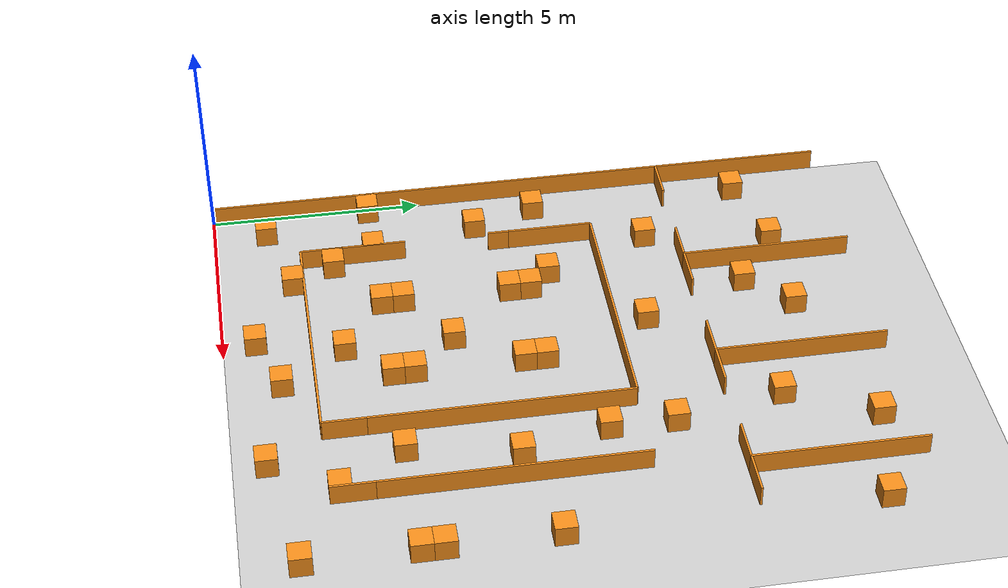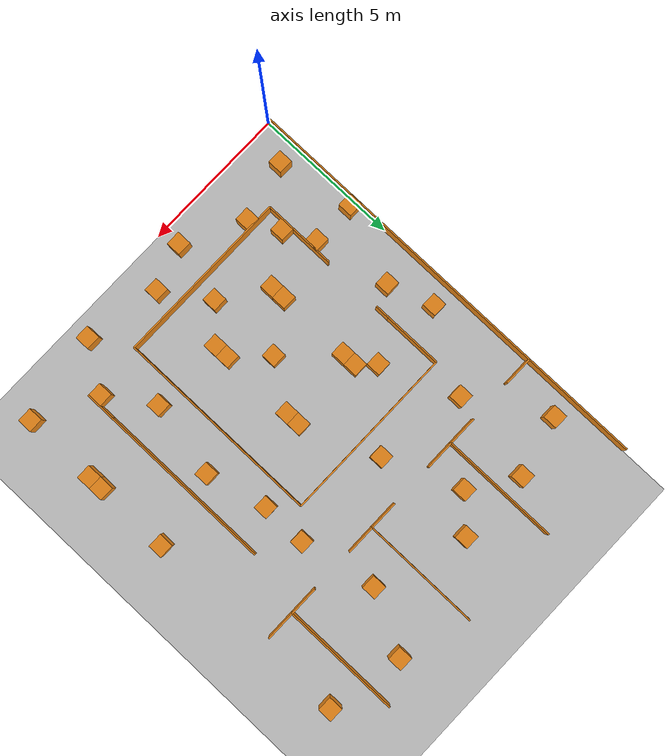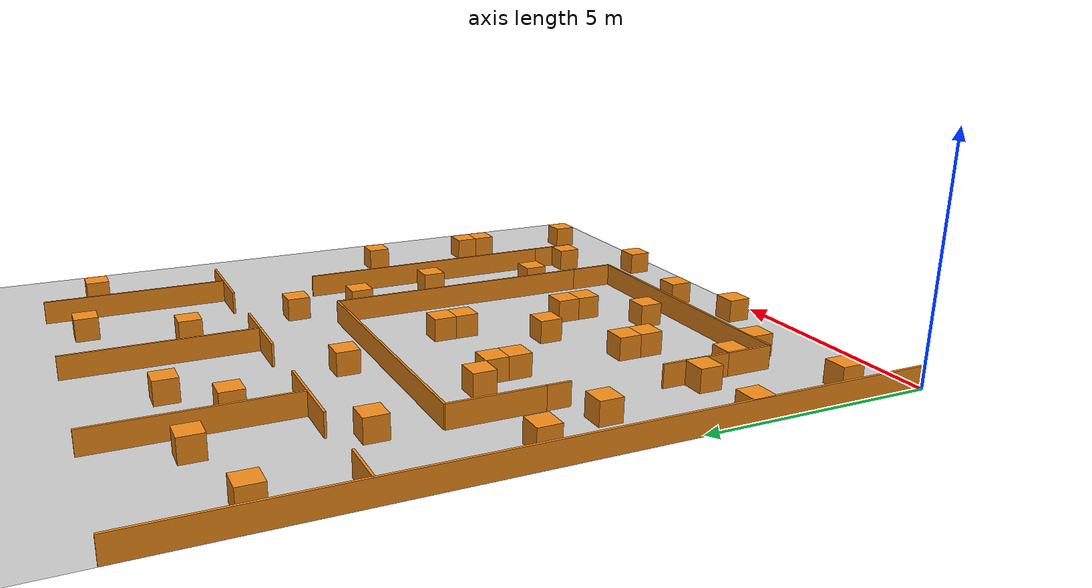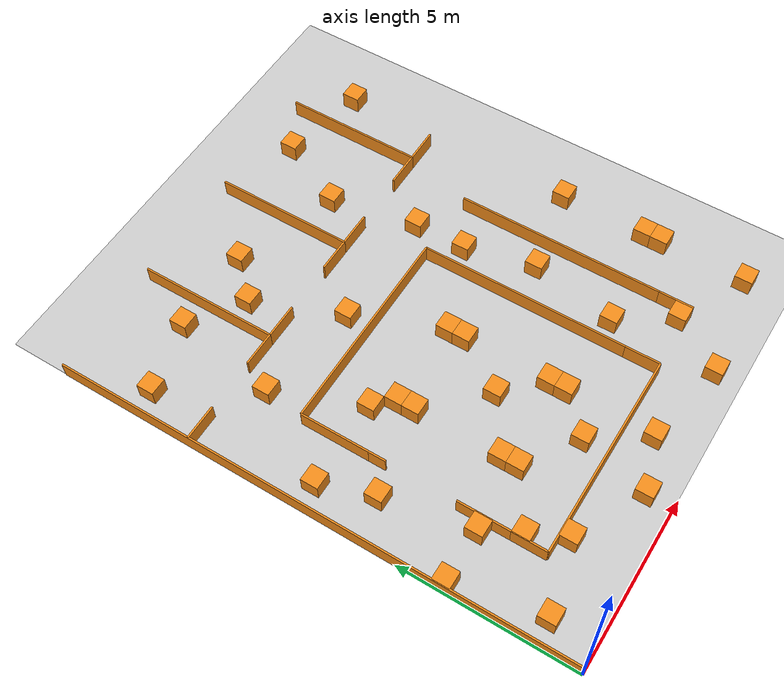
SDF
<sdf version="1.7">
 <world name="default">
  <model name="box_121">
   <pose>8.75 9.75 0.25 0 -0 0</pose>
   <link name="link">
    <inertial>
     <mass>1</mass>
     <inertia><ixx>0</ixx><ixy>0</ixy><ixz>0</ixz><iyy>0</iyy><iyz>0</iyz><izz>0</izz></inertia>
    </inertial>
    <collision name="collision"><geometry><box><size>0.5 0.5 0.5</size></box></geometry></collision>
    <visual name="visual">
     <geometry><box><size>0.5 0.5 0.5</size></box></geometry>
     <material>
      <script><name>Gazebo/Orange</name><uri>file://media/materials/scripts/gazebo.material</uri></script>
     </material>
    </visual>
   </link>
   <static>1</static>
  </model>
  <model name="box_118">
   <pose>9.75 2.25 0.25 0 -0 0</pose>
   <link name="link">
    <inertial>
     <mass>1</mass>
     <inertia><ixx>0</ixx><ixy>0</ixy><ixz>0</ixz><iyy>0</iyy><iyz>0</iyz><izz>0</izz></inertia>
    </inertial>
    <collision name="collision"><geometry><box><size>0.5 0.5 0.5</size></box></geometry></collision>
    <visual name="visual">
     <geometry><box><size>0.5 0.5 0.5</size></box></geometry>
     <material>
      <script><name>Gazebo/Orange</name><uri>file://media/materials/scripts/gazebo.material</uri></script>
     </material>
    </visual>
   </link>
   <static>1</static>
  </model>
  <model name="box_117">
   <pose>8.75 8.25 0.25 0 -0 0</pose>
   <link name="link">
    <inertial>
     <mass>1</mass>
     <inertia><ixx>0</ixx><ixy>0</ixy><ixz>0</ixz><iyy>0</iyy><iyz>0</iyz><izz>0</izz></inertia>
    </inertial>
    <collision name="collision"><geometry><box><size>0.5 0.5 0.5</size></box></geometry></collision>
    <visual name="visual">
     <geometry><box><size>0.5 0.5 0.5</size></box></geometry>
     <material>
      <script><name>Gazebo/Orange</name><uri>file://media/materials/scripts/gazebo.material</uri></script>
     </material>
    </visual>
   </link>
   <static>1</static>
  </model>
  <model name="box_116">
   <pose>8.75 3.75 0.25 0 -0 0</pose>
   <link name="link">
    <inertial>
     <mass>1</mass>
     <inertia><ixx>0</ixx><ixy>0</ixy><ixz>0</ixz><iyy>0</iyy><iyz>0</iyz><izz>0</izz></inertia>
    </inertial>
    <collision name="collision"><geometry><box><size>0.5 0.5 0.5</size></box></geometry></collision>
    <visual name="visual">
     <geometry><box><size>0.5 0.5 0.5</size></box></geometry>
     <material>
      <script><name>Gazebo/Orange</name><uri>file://media/materials/scripts/gazebo.material</uri></script>
     </material>
    </visual>
   </link>
   <static>1</static>
  </model>
  <model name="box_115">
   <pose>5.25 2.75 0.25 0 -0 0</pose>
   <link name="link">
    <inertial>
     <mass>1</mass>
     <inertia><ixx>0</ixx><ixy>0</ixy><ixz>0</ixz><iyy>0</iyy><iyz>0</iyz><izz>0</izz></inertia>
    </inertial>
    <collision name="collision"><geometry><box><size>0.5 0.5 0.5</size></box></geometry></collision>
    <visual name="visual">
     <geometry><box><size>0.5 0.5 0.5</size></box></geometry>
     <material>
      <script><name>Gazebo/Orange</name><uri>file://media/materials/scripts/gazebo.material</uri></script>
     </material>
    </visual>
   </link>
   <static>1</static>
  </model>
  <model name="box_114">
   <pose>2.25 2.75 0.25 0 -0 0</pose>
   <link name="link">
    <inertial>
     <mass>1</mass>
     <inertia><ixx>0</ixx><ixy>0</ixy><ixz>0</ixz><iyy>0</iyy><iyz>0</iyz><izz>0</izz></inertia>
    </inertial>
    <collision name="collision"><geometry><box><size>0.5 0.5 0.5</size></box></geometry></collision>
    <visual name="visual">
     <geometry><box><size>0.5 0.5 0.5</size></box></geometry>
     <material>
      <script><name>Gazebo/Orange</name><uri>file://media/materials/scripts/gazebo.material</uri></script>
     </material>
    </visual>
   </link>
   <static>1</static>
  </model>
  <model name="box_110">
   <pose>3.25 7.75 0.25 0 -0 0</pose>
   <link name="link">
    <inertial>
     <mass>1</mass>
     <inertia><ixx>0</ixx><ixy>0</ixy><ixz>0</ixz><iyy>0</iyy><iyz>0</iyz><izz>0</izz></inertia>
    </inertial>
    <collision name="collision"><geometry><box><size>0.5 0.5 0.5</size></box></geometry></collision>
    <visual name="visual">
     <geometry><box><size>0.5 0.5 0.5</size></box></geometry>
     <material>
      <script><name>Gazebo/Orange</name><uri>file://media/materials/scripts/gazebo.material</uri></script>
     </material>
    </visual>
   </link>
   <static>1</static>
  </model>
  <model name="box_108">
   <pose>5.25 5.25 0.25 0 -0 0</pose>
   <link name="link">
    <inertial>
     <mass>1</mass>
     <inertia><ixx>0</ixx><ixy>0</ixy><ixz>0</ixz><iyy>0</iyy><iyz>0</iyz><izz>0</izz></inertia>
    </inertial>
    <collision name="collision"><geometry><box><size>0.5 0.5 0.5</size></box></geometry></collision>
    <visual name="visual">
     <geometry><box><size>0.5 0.5 0.5</size></box></geometry>
     <material>
      <script><name>Gazebo/Orange</name><uri>file://media/materials/scripts/gazebo.material</uri></script>
     </material>
    </visual>
   </link>
   <static>1</static>
  </model>
  <model name="box_102">
   <pose>6.25 1.25 0.25 0 -0 0</pose>
   <link name="link">
    <inertial>
     <mass>1</mass>
     <inertia><ixx>0</ixx><ixy>0</ixy><ixz>0</ixz><iyy>0</iyy><iyz>0</iyz><izz>0</izz></inertia>
    </inertial>
    <collision name="collision"><geometry><box><size>0.5 0.5 0.5</size></box></geometry></collision>
    <visual name="visual">
     <geometry><box><size>0.5 0.5 0.5</size></box></geometry>
     <material>
      <script><name>Gazebo/Orange</name><uri>file://media/materials/scripts/gazebo.material</uri></script>
     </material>
    </visual>
   </link>
   <static>1</static>
  </model>
  <model name="box_101">
   <pose>2.75 1.75 0.25 0 -0 0</pose>
   <link name="link">
    <inertial>
     <mass>1</mass>
     <inertia><ixx>0</ixx><ixy>0</ixy><ixz>0</ixz><iyy>0</iyy><iyz>0</iyz><izz>0</izz></inertia>
    </inertial>
    <collision name="collision"><geometry><box><size>0.5 0.5 0.5</size></box></geometry></collision>
    <visual name="visual">
     <geometry><box><size>0.5 0.5 0.5</size></box></geometry>
     <material>
      <script><name>Gazebo/Orange</name><uri>file://media/materials/scripts/gazebo.material</uri></script>
     </material>
    </visual>
   </link>
   <static>1</static>
  </model>
  <model name="box_100">
   <pose>4.75 0.75 0.25 0 -0 0</pose>
   <link name="link">
    <inertial>
     <mass>1</mass>
     <inertia><ixx>0</ixx><ixy>0</ixy><ixz>0</ixz><iyy>0</iyy><iyz>0</iyz><izz>0</izz></inertia>
    </inertial>
    <collision name="collision"><geometry><box><size>0.5 0.5 0.5</size></box></geometry></collision>
    <visual name="visual">
     <geometry><box><size>0.5 0.5 0.5</size></box></geometry>
     <material>
      <script><name>Gazebo/Orange</name><uri>file://media/materials/scripts/gazebo.material</uri></script>
     </material>
    </visual>
   </link>
   <static>1</static>
  </model>
  <model name="box_99">
   <pose>1.25 6.25 0.25 0 -0 0</pose>
   <link name="link">
    <inertial>
     <mass>1</mass>
     <inertia><ixx>0</ixx><ixy>0</ixy><ixz>0</ixz><iyy>0</iyy><iyz>0</iyz><izz>0</izz></inertia>
    </inertial>
    <collision name="collision"><geometry><box><size>0.5 0.5 0.5</size></box></geometry></collision>
    <visual name="visual">
     <geometry><box><size>0.5 0.5 0.5</size></box></geometry>
     <material>
      <script><name>Gazebo/Orange</name><uri>file://media/materials/scripts/gazebo.material</uri></script>
     </material>
    </visual>
   </link>
   <static>1</static>
  </model>
  <model name="box_98">
   <pose>1.75 3.75 0.25 0 -0 0</pose>
   <link name="link">
    <inertial>
     <mass>1</mass>
     <inertia><ixx>0</ixx><ixy>0</ixy><ixz>0</ixz><iyy>0</iyy><iyz>0</iyz><izz>0</izz></inertia>
    </inertial>
    <collision name="collision"><geometry><box><size>0.5 0.5 0.5</size></box></geometry></collision>
    <visual name="visual">
     <geometry><box><size>0.5 0.5 0.5</size></box></geometry>
     <material>
      <script><name>Gazebo/Orange</name><uri>file://media/materials/scripts/gazebo.material</uri></script>
     </material>
    </visual>
   </link>
   <static>1</static>
  </model>
  <model name="box_97">
   <pose>0.25 3.75 0.25 0 -0 0</pose>
   <link name="link">
    <inertial>
     <mass>1</mass>
     <inertia><ixx>0</ixx><ixy>0</ixy><ixz>0</ixz><iyy>0</iyy><iyz>0</iyz><izz>0</izz></inertia>
    </inertial>
    <collision name="collision"><geometry><box><size>0.5 0.5 0.5</size></box></geometry></collision>
    <visual name="visual">
     <geometry><box><size>0.5 0.5 0.5</size></box></geometry>
     <material>
      <script><name>Gazebo/Orange</name><uri>file://media/materials/scripts/gazebo.material</uri></script>
     </material>
    </visual>
   </link>
   <static>1</static>
  </model>
  <model name="box_96">
   <pose>5.25 9.75 0.25 0 -0 0</pose>
   <link name="link">
    <inertial>
     <mass>1</mass>
     <inertia><ixx>0</ixx><ixy>0</ixy><ixz>0</ixz><iyy>0</iyy><iyz>0</iyz><izz>0</izz></inertia>
    </inertial>
    <collision name="collision"><geometry><box><size>0.5 0.5 0.5</size></box></geometry></collision>
    <visual name="visual">
     <geometry><box><size>0.5 0.5 0.5</size></box></geometry>
     <material>
      <script><name>Gazebo/Orange</name><uri>file://media/materials/scripts/gazebo.material</uri></script>
     </material>
    </visual>
   </link>
   <static>1</static>
  </model>
  <model name="box_95">
   <pose>2.25 10.25 0.25 0 -0 0</pose>
   <link name="link">
    <inertial>
     <mass>1</mass>
     <inertia><ixx>0</ixx><ixy>0</ixy><ixz>0</ixz><iyy>0</iyy><iyz>0</iyz><izz>0</izz></inertia>
    </inertial>
    <collision name="collision"><geometry><box><size>0.5 0.5 0.5</size></box></geometry></collision>
    <visual name="visual">
     <geometry><box><size>0.5 0.5 0.5</size></box></geometry>
     <material>
      <script><name>Gazebo/Orange</name><uri>file://media/materials/scripts/gazebo.material</uri></script>
     </material>
    </visual>
   </link>
   <static>1</static>
  </model>
  <model name="box_94">
   <pose>0.75 7.75 0.25 0 -0 0</pose>
   <link name="link">
    <inertial>
     <mass>1</mass>
     <inertia><ixx>0</ixx><ixy>0</ixy><ixz>0</ixz><iyy>0</iyy><iyz>0</iyz><izz>0</izz></inertia>
    </inertial>
    <collision name="collision"><geometry><box><size>0.5 0.5 0.5</size></box></geometry></collision>
    <visual name="visual">
     <geometry><box><size>0.5 0.5 0.5</size></box></geometry>
     <material>
      <script><name>Gazebo/Orange</name><uri>file://media/materials/scripts/gazebo.material</uri></script>
     </material>
    </visual>
   </link>
   <static>1</static>
  </model>
  <model name="box_92">
   <pose>11.75 1.25 0.25 0 -0 0</pose>
   <link name="link">
    <inertial>
     <mass>1</mass>
     <inertia><ixx>0</ixx><ixy>0</ixy><ixz>0</ixz><iyy>0</iyy><iyz>0</iyz><izz>0</izz></inertia>
    </inertial>
    <collision name="collision"><geometry><box><size>0.5 0.5 0.5</size></box></geometry></collision>
    <visual name="visual">
     <geometry><box><size>0.5 0.5 0.5</size></box></geometry>
     <material>
      <script><name>Gazebo/Orange</name><uri>file://media/materials/scripts/gazebo.material</uri></script>
     </material>
    </visual>
   </link>
   <static>1</static>
  </model>
  <model name="box_85">
   <pose>9.25 6.25 0.25 0 -0 0</pose>
   <link name="link">
    <inertial>
     <mass>1</mass>
     <inertia><ixx>0</ixx><ixy>0</ixy><ixz>0</ixz><iyy>0</iyy><iyz>0</iyz><izz>0</izz></inertia>
    </inertial>
    <collision name="collision"><geometry><box><size>0.5 0.5 0.5</size></box></geometry></collision>
    <visual name="visual">
     <geometry><box><size>0.5 0.5 0.5</size></box></geometry>
     <material>
      <script><name>Gazebo/Orange</name><uri>file://media/materials/scripts/gazebo.material</uri></script>
     </material>
    </visual>
   </link>
   <static>1</static>
  </model>
  <model name="box_84">
   <pose>8.75 0.75 0.25 0 -0 0</pose>
   <link name="link">
    <inertial>
     <mass>1</mass>
     <inertia><ixx>0</ixx><ixy>0</ixy><ixz>0</ixz><iyy>0</iyy><iyz>0</iyz><izz>0</izz></inertia>
    </inertial>
    <collision name="collision"><geometry><box><size>0.5 0.5 0.5</size></box></geometry></collision>
    <visual name="visual">
     <geometry><box><size>0.5 0.5 0.5</size></box></geometry>
     <material>
      <script><name>Gazebo/Orange</name><uri>file://media/materials/scripts/gazebo.material</uri></script>
     </material>
    </visual>
   </link>
   <static>1</static>
  </model>
  <model name="box_83">
   <pose>0.75 1.25 0.25 0 -0 0</pose>
   <link name="link">
    <inertial>
     <mass>1</mass>
     <inertia><ixx>0</ixx><ixy>0</ixy><ixz>0</ixz><iyy>0</iyy><iyz>0</iyz><izz>0</izz></inertia>
    </inertial>
    <collision name="collision"><geometry><box><size>0.5 0.5 0.5</size></box></geometry></collision>
    <visual name="visual">
     <geometry><box><size>0.5 0.5 0.5</size></box></geometry>
     <material>
      <script><name>Gazebo/Orange</name><uri>file://media/materials/scripts/gazebo.material</uri></script>
     </material>
    </visual>
   </link>
   <static>1</static>
  </model>
  <model name="box_68">
   <pose>11.75 13.75 0.25 0 -0 0</pose>
   <link name="link">
    <inertial>
     <mass>1</mass>
     <inertia><ixx>0</ixx><ixy>0</ixy><ixz>0</ixz><iyy>0</iyy><iyz>0</iyz><izz>0</izz></inertia>
    </inertial>
    <collision name="collision"><geometry><box><size>0.5 0.5 0.5</size></box></geometry></collision>
    <visual name="visual">
     <geometry><box><size>0.5 0.5 0.5</size></box></geometry>
     <material>
      <script><name>Gazebo/Orange</name><uri>file://media/materials/scripts/gazebo.material</uri></script>
     </material>
    </visual>
   </link>
   <static>1</static>
  </model>
  <model name="box_66">
   <pose>9.25 14.25 0.25 0 -0 0</pose>
   <link name="link">
    <inertial>
     <mass>1</mass>
     <inertia><ixx>0</ixx><ixy>0</ixy><ixz>0</ixz><iyy>0</iyy><iyz>0</iyz><izz>0</izz></inertia>
    </inertial>
    <collision name="collision"><geometry><box><size>0.5 0.5 0.5</size></box></geometry></collision>
    <visual name="visual">
     <geometry><box><size>0.5 0.5 0.5</size></box></geometry>
     <material>
      <script><name>Gazebo/Orange</name><uri>file://media/materials/scripts/gazebo.material</uri></script>
     </material>
    </visual>
   </link>
   <static>1</static>
  </model>
  <model name="box_65">
   <pose>8.25 12.25 0.25 0 -0 0</pose>
   <link name="link">
    <inertial>
     <mass>1</mass>
     <inertia><ixx>0</ixx><ixy>0</ixy><ixz>0</ixz><iyy>0</iyy><iyz>0</iyz><izz>0</izz></inertia>
    </inertial>
    <collision name="collision"><geometry><box><size>0.5 0.5 0.5</size></box></geometry></collision>
    <visual name="visual">
     <geometry><box><size>0.5 0.5 0.5</size></box></geometry>
     <material>
      <script><name>Gazebo/Orange</name><uri>file://media/materials/scripts/gazebo.material</uri></script>
     </material>
    </visual>
   </link>
   <static>1</static>
  </model>
  <model name="box_64">
   <pose>2.75 13.25 0.25 0 -0 0</pose>
   <link name="link">
    <inertial>
     <mass>1</mass>
     <inertia><ixx>0</ixx><ixy>0</ixy><ixz>0</ixz><iyy>0</iyy><iyz>0</iyz><izz>0</izz></inertia>
    </inertial>
    <collision name="collision"><geometry><box><size>0.5 0.5 0.5</size></box></geometry></collision>
    <visual name="visual">
     <geometry><box><size>0.5 0.5 0.5</size></box></geometry>
     <material>
      <script><name>Gazebo/Orange</name><uri>file://media/materials/scripts/gazebo.material</uri></script>
     </material>
    </visual>
   </link>
   <static>1</static>
  </model>
  <model name="box_63">
   <pose>0.75 12.75 0.25 0 -0 0</pose>
   <link name="link">
    <inertial>
     <mass>1</mass>
     <inertia><ixx>0</ixx><ixy>0</ixy><ixz>0</ixz><iyy>0</iyy><iyz>0</iyz><izz>0</izz></inertia>
    </inertial>
    <collision name="collision"><geometry><box><size>0.5 0.5 0.5</size></box></geometry></collision>
    <visual name="visual">
     <geometry><box><size>0.5 0.5 0.5</size></box></geometry>
     <material>
      <script><name>Gazebo/Orange</name><uri>file://media/materials/scripts/gazebo.material</uri></script>
     </material>
    </visual>
   </link>
   <static>1</static>
  </model>
  <model name="box_62">
   <pose>4.25 12.25 0.25 0 -0 0</pose>
   <link name="link">
    <inertial>
     <mass>1</mass>
     <inertia><ixx>0</ixx><ixy>0</ixy><ixz>0</ixz><iyy>0</iyy><iyz>0</iyz><izz>0</izz></inertia>
    </inertial>
    <collision name="collision"><geometry><box><size>0.5 0.5 0.5</size></box></geometry></collision>
    <visual name="visual">
     <geometry><box><size>0.5 0.5 0.5</size></box></geometry>
     <material>
      <script><name>Gazebo/Orange</name><uri>file://media/materials/scripts/gazebo.material</uri></script>
     </material>
    </visual>
   </link>
   <static>1</static>
  </model>
  <model name="box_61">
   <pose>5.25 13.25 0.25 0 -0 0</pose>
   <link name="link">
    <inertial>
     <mass>1</mass>
     <inertia><ixx>0</ixx><ixy>0</ixy><ixz>0</ixz><iyy>0</iyy><iyz>0</iyz><izz>0</izz></inertia>
    </inertial>
    <collision name="collision"><geometry><box><size>0.5 0.5 0.5</size></box></geometry></collision>
    <visual name="visual">
     <geometry><box><size>0.5 0.5 0.5</size></box></geometry>
     <material>
      <script><name>Gazebo/Orange</name><uri>file://media/materials/scripts/gazebo.material</uri></script>
     </material>
    </visual>
   </link>
   <static>1</static>
  </model>
  <model name="box_60">
   <pose>6.25 3.75 0.25 0 -0 0</pose>
   <link name="link">
    <inertial>
     <mass>1</mass>
     <inertia><ixx>0</ixx><ixy>0</ixy><ixz>0</ixz><iyy>0</iyy><iyz>0</iyz><izz>0</izz></inertia>
    </inertial>
    <collision name="collision"><geometry><box><size>0.5 0.5 0.5</size></box></geometry></collision>
    <visual name="visual">
     <geometry><box><size>0.5 0.5 0.5</size></box></geometry>
     <material>
      <script><name>Gazebo/Orange</name><uri>file://media/materials/scripts/gazebo.material</uri></script>
     </material>
    </visual>
   </link>
   <static>1</static>
  </model>
  <model name="box_59">
   <pose>6.25 4.25 0.25 0 -0 0</pose>
   <link name="link">
    <inertial>
     <mass>1</mass>
     <inertia><ixx>0</ixx><ixy>0</ixy><ixz>0</ixz><iyy>0</iyy><iyz>0</iyz><izz>0</izz></inertia>
    </inertial>
    <collision name="collision"><geometry><box><size>0.5 0.5 0.5</size></box></geometry></collision>
    <visual name="visual">
     <geometry><box><size>0.5 0.5 0.5</size></box></geometry>
     <material>
      <script><name>Gazebo/Orange</name><uri>file://media/materials/scripts/gazebo.material</uri></script>
     </material>
    </visual>
   </link>
   <static>1</static>
  </model>
  <model name="box_58">
   <pose>3.75 3.75 0.25 0 -0 0</pose>
   <link name="link">
    <inertial>
     <mass>1</mass>
     <inertia><ixx>0</ixx><ixy>0</ixy><ixz>0</ixz><iyy>0</iyy><iyz>0</iyz><izz>0</izz></inertia>
    </inertial>
    <collision name="collision"><geometry><box><size>0.5 0.5 0.5</size></box></geometry></collision>
    <visual name="visual">
     <geometry><box><size>0.5 0.5 0.5</size></box></geometry>
     <material>
      <script><name>Gazebo/Orange</name><uri>file://media/materials/scripts/gazebo.material</uri></script>
     </material>
    </visual>
   </link>
   <static>1</static>
  </model>
  <model name="box_57">
   <pose>3.75 4.25 0.25 0 -0 0</pose>
   <link name="link">
    <inertial>
     <mass>1</mass>
     <inertia><ixx>0</ixx><ixy>0</ixy><ixz>0</ixz><iyy>0</iyy><iyz>0</iyz><izz>0</izz></inertia>
    </inertial>
    <collision name="collision"><geometry><box><size>0.5 0.5 0.5</size></box></geometry></collision>
    <visual name="visual">
     <geometry><box><size>0.5 0.5 0.5</size></box></geometry>
     <material>
      <script><name>Gazebo/Orange</name><uri>file://media/materials/scripts/gazebo.material</uri></script>
     </material>
    </visual>
   </link>
   <static>1</static>
  </model>
  <model name="box_56">
   <pose>3.75 6.75 0.25 0 -0 0</pose>
   <link name="link">
    <inertial>
     <mass>1</mass>
     <inertia><ixx>0</ixx><ixy>0</ixy><ixz>0</ixz><iyy>0</iyy><iyz>0</iyz><izz>0</izz></inertia>
    </inertial>
    <collision name="collision"><geometry><box><size>0.5 0.5 0.5</size></box></geometry></collision>
    <visual name="visual">
     <geometry><box><size>0.5 0.5 0.5</size></box></geometry>
     <material>
      <script><name>Gazebo/Orange</name><uri>file://media/materials/scripts/gazebo.material</uri></script>
     </material>
    </visual>
   </link>
   <static>1</static>
  </model>
  <model name="box_55">
   <pose>3.75 7.25 0.25 0 -0 0</pose>
   <link name="link">
    <inertial>
     <mass>1</mass>
     <inertia><ixx>0</ixx><ixy>0</ixy><ixz>0</ixz><iyy>0</iyy><iyz>0</iyz><izz>0</izz></inertia>
    </inertial>
    <collision name="collision"><geometry><box><size>0.5 0.5 0.5</size></box></geometry></collision>
    <visual name="visual">
     <geometry><box><size>0.5 0.5 0.5</size></box></geometry>
     <material>
      <script><name>Gazebo/Orange</name><uri>file://media/materials/scripts/gazebo.material</uri></script>
     </material>
    </visual>
   </link>
   <static>1</static>
  </model>
  <model name="box_54">
   <pose>6.25 6.75 0.25 0 -0 0</pose>
   <link name="link">
    <inertial>
     <mass>1</mass>
     <inertia><ixx>0</ixx><ixy>0</ixy><ixz>0</ixz><iyy>0</iyy><iyz>0</iyz><izz>0</izz></inertia>
    </inertial>
    <collision name="collision"><geometry><box><size>0.5 0.5 0.5</size></box></geometry></collision>
    <visual name="visual">
     <geometry><box><size>0.5 0.5 0.5</size></box></geometry>
     <material>
      <script><name>Gazebo/Orange</name><uri>file://media/materials/scripts/gazebo.material</uri></script>
     </material>
    </visual>
   </link>
   <static>1</static>
  </model>
  <model name="box_53">
   <pose>6.25 7.25 0.25 0 -0 0</pose>
   <link name="link">
    <inertial>
     <mass>1</mass>
     <inertia><ixx>0</ixx><ixy>0</ixy><ixz>0</ixz><iyy>0</iyy><iyz>0</iyz><izz>0</izz></inertia>
    </inertial>
    <collision name="collision"><geometry><box><size>0.5 0.5 0.5</size></box></geometry></collision>
    <visual name="visual">
     <geometry><box><size>0.5 0.5 0.5</size></box></geometry>
     <material>
      <script><name>Gazebo/Orange</name><uri>file://media/materials/scripts/gazebo.material</uri></script>
     </material>
    </visual>
   </link>
   <static>1</static>
  </model>
  <model name="box_50">
   <pose>11.75 4.25 0.25 0 -0 0</pose>
   <link name="link">
    <inertial>
     <mass>1</mass>
     <inertia><ixx>0</ixx><ixy>0</ixy><ixz>0</ixz><iyy>0</iyy><iyz>0</iyz><izz>0</izz></inertia>
    </inertial>
    <collision name="collision"><geometry><box><size>0.5 0.5 0.5</size></box></geometry></collision>
    <visual name="visual">
     <geometry><box><size>0.5 0.5 0.5</size></box></geometry>
     <material>
      <script><name>Gazebo/Orange</name><uri>file://media/materials/scripts/gazebo.material</uri></script>
     </material>
    </visual>
   </link>
   <static>1</static>
  </model>
  <model name="box_49">
   <pose>11.75 6.75 0.25 0 -0 0</pose>
   <link name="link">
    <inertial>
     <mass>1</mass>
     <inertia><ixx>0</ixx><ixy>0</ixy><ixz>0</ixz><iyy>0</iyy><iyz>0</iyz><izz>0</izz></inertia>
    </inertial>
    <collision name="collision"><geometry><box><size>0.5 0.5 0.5</size></box></geometry></collision>
    <visual name="visual">
     <geometry><box><size>0.5 0.5 0.5</size></box></geometry>
     <material>
      <script><name>Gazebo/Orange</name><uri>file://media/materials/scripts/gazebo.material</uri></script>
     </material>
    </visual>
   </link>
   <static>1</static>
  </model>
  <model name="box_47">
   <pose>11.75 3.75 0.25 0 -0 0</pose>
   <link name="link">
    <inertial>
     <mass>1</mass>
     <inertia><ixx>0</ixx><ixy>0</ixy><ixz>0</ixz><iyy>0</iyy><iyz>0</iyz><izz>0</izz></inertia>
    </inertial>
    <collision name="collision"><geometry><box><size>0.5 0.5 0.5</size></box></geometry></collision>
    <visual name="visual">
     <geometry><box><size>0.5 0.5 0.5</size></box></geometry>
     <material>
      <script><name>Gazebo/Orange</name><uri>file://media/materials/scripts/gazebo.material</uri></script>
     </material>
    </visual>
   </link>
   <static>1</static>
  </model>
  <model name="box_42">
   <pose>2 6.75 0.25 0 0 -1.5708</pose>
   <link name="link">
    <inertial>
     <mass>1</mass>
     <inertia><ixx>0</ixx><ixy>0</ixy><ixz>0</ixz><iyy>0</iyy><iyz>0</iyz><izz>0</izz></inertia>
    </inertial>
    <collision name="collision"><geometry><box><size>0.5 0.05 0.5</size></box></geometry></collision>
    <visual name="visual">
     <geometry><box><size>0.5 0.05 0.5</size></box></geometry>
     <material>
      <script><name>Gazebo/Orange</name><uri>file://media/materials/scripts/gazebo.material</uri></script>
     </material>
    </visual>
   </link>
   <static>1</static>
  </model>
  <model name="box_41">
   <pose>2 3.75 0.25 0 -0 1.5708</pose>
   <link name="link">
    <inertial>
     <mass>1</mass>
     <inertia><ixx>0</ixx><ixy>0</ixy><ixz>0</ixz><iyy>0</iyy><iyz>0</iyz><izz>0</izz></inertia>
    </inertial>
    <collision name="collision"><geometry><box><size>1.5 0.05 0.5</size></box></geometry></collision>
    <visual name="visual">
     <geometry><box><size>1.5 0.05 0.5</size></box></geometry>
     <material>
      <script><name>Gazebo/Orange</name><uri>file://media/materials/scripts/gazebo.material</uri></script>
     </material>
    </visual>
   </link>
   <static>1</static>
  </model>
  <model name="box_37">
   <pose>10 2.5 0.25 0 0 -1.5708</pose>
   <link name="link">
    <inertial>
     <mass>1</mass>
     <inertia><ixx>0</ixx><ixy>0</ixy><ixz>0</ixz><iyy>0</iyy><iyz>0</iyz><izz>0</izz></inertia>
    </inertial>
    <collision name="collision"><geometry><box><size>1 0.05 0.5</size></box></geometry></collision>
    <visual name="visual">
     <geometry><box><size>1 0.05 0.5</size></box></geometry>
     <material>
      <script><name>Gazebo/Orange</name><uri>file://media/materials/scripts/gazebo.material</uri></script>
     </material>
    </visual>
   </link>
   <static>1</static>
  </model>
  <model name="box_34">
   <pose>8 2.5 0.25 0 -0 1.5708</pose>
   <link name="link">
    <inertial>
     <mass>1</mass>
     <inertia><ixx>0</ixx><ixy>0</ixy><ixz>0</ixz><iyy>0</iyy><iyz>0</iyz><izz>0</izz></inertia>
    </inertial>
    <collision name="collision"><geometry><box><size>1 0.05 0.5</size></box></geometry></collision>
    <visual name="visual">
     <geometry><box><size>1 0.05 0.5</size></box></geometry>
     <material>
      <script><name>Gazebo/Orange</name><uri>file://media/materials/scripts/gazebo.material</uri></script>
     </material>
    </visual>
   </link>
   <static>1</static>
  </model>
  <model name="box_33">
   <pose>2 2.5 0.25 0 -0 1.5708</pose>
   <link name="link">
    <inertial>
     <mass>1</mass>
     <inertia><ixx>0</ixx><ixy>0</ixy><ixz>0</ixz><iyy>0</iyy><iyz>0</iyz><izz>0</izz></inertia>
    </inertial>
    <collision name="collision"><geometry><box><size>1 0.05 0.5</size></box></geometry></collision>
    <visual name="visual">
     <geometry><box><size>1 0.05 0.5</size></box></geometry>
     <material>
      <script><name>Gazebo/Orange</name><uri>file://media/materials/scripts/gazebo.material</uri></script>
     </material>
    </visual>
   </link>
   <static>1</static>
  </model>
  <model name="box_32">
   <pose>5 2 0.25 0 0 -3.14159</pose>
   <link name="link">
    <inertial>
     <mass>1</mass>
     <inertia><ixx>0</ixx><ixy>0</ixy><ixz>0</ixz><iyy>0</iyy><iyz>0</iyz><izz>0</izz></inertia>
    </inertial>
    <collision name="collision"><geometry><box><size>6 0.05 0.5</size></box></geometry></collision>
    <visual name="visual">
     <geometry><box><size>6 0.05 0.5</size></box></geometry>
     <material>
      <script><name>Gazebo/Orange</name><uri>file://media/materials/scripts/gazebo.material</uri></script>
     </material>
    </visual>
   </link>
   <static>1</static>
  </model>
  <model name="box_20">
   <pose>10 6 0.25 0 -0 1.5708</pose>
   <link name="link">
    <inertial>
     <mass>1</mass>
     <inertia><ixx>0</ixx><ixy>0</ixy><ixz>0</ixz><iyy>0</iyy><iyz>0</iyz><izz>0</izz></inertia>
    </inertial>
    <collision name="collision"><geometry><box><size>6 0.05 0.5</size></box></geometry></collision>
    <visual name="visual">
     <geometry><box><size>6 0.05 0.5</size></box></geometry>
     <material>
      <script><name>Gazebo/Orange</name><uri>file://media/materials/scripts/gazebo.material</uri></script>
     </material>
    </visual>
   </link>
   <static>1</static>
  </model>
  <model name="box_19">
   <pose>5 9 0.25 0 -0 0</pose>
   <link name="link">
    <inertial>
     <mass>1</mass>
     <inertia><ixx>0</ixx><ixy>0</ixy><ixz>0</ixz><iyy>0</iyy><iyz>0</iyz><izz>0</izz></inertia>
    </inertial>
    <collision name="collision"><geometry><box><size>6 0.05 0.5</size></box></geometry></collision>
    <visual name="visual">
     <geometry><box><size>6 0.05 0.5</size></box></geometry>
     <material>
      <script><name>Gazebo/Orange</name><uri>file://media/materials/scripts/gazebo.material</uri></script>
     </material>
    </visual>
   </link>
   <static>1</static>
  </model>
  <model name="box_18">
   <pose>8 6 0.25 0 0 -1.5708</pose>
   <link name="link">
    <inertial>
     <mass>1</mass>
     <inertia><ixx>0</ixx><ixy>0</ixy><ixz>0</ixz><iyy>0</iyy><iyz>0</iyz><izz>0</izz></inertia>
    </inertial>
    <collision name="collision"><geometry><box><size>6 0.05 0.5</size></box></geometry></collision>
    <visual name="visual">
     <geometry><box><size>6 0.05 0.5</size></box></geometry>
     <material>
      <script><name>Gazebo/Orange</name><uri>file://media/materials/scripts/gazebo.material</uri></script>
     </material>
    </visual>
   </link>
   <static>1</static>
  </model>
  <model name="box_17">
   <pose>2 8 0.25 0 -0 1.5708</pose>
   <link name="link">
    <inertial>
     <mass>1</mass>
     <inertia><ixx>0</ixx><ixy>0</ixy><ixz>0</ixz><iyy>0</iyy><iyz>0</iyz><izz>0</izz></inertia>
    </inertial>
    <collision name="collision"><geometry><box><size>2 0.05 0.5</size></box></geometry></collision>
    <visual name="visual">
     <geometry><box><size>2 0.05 0.5</size></box></geometry>
     <material>
      <script><name>Gazebo/Orange</name><uri>file://media/materials/scripts/gazebo.material</uri></script>
     </material>
    </visual>
   </link>
   <static>1</static>
  </model>
  <model name="box_14">
   <pose>11 11 0.25 0 -0 0</pose>
   <link name="link">
    <inertial>
     <mass>1</mass>
     <inertia><ixx>0</ixx><ixy>0</ixy><ixz>0</ixz><iyy>0</iyy><iyz>0</iyz><izz>0</izz></inertia>
    </inertial>
    <collision name="collision"><geometry><box><size>1 0.05 0.5</size></box></geometry></collision>
    <visual name="visual">
     <geometry><box><size>1 0.05 0.5</size></box></geometry>
     <material>
      <script><name>Gazebo/Orange</name><uri>file://media/materials/scripts/gazebo.material</uri></script>
     </material>
    </visual>
   </link>
   <static>1</static>
  </model>
  <model name="box_13">
   <pose>10.5 13 0.25 0 0 -1.5708</pose>
   <link name="link">
    <inertial>
     <mass>1</mass>
     <inertia><ixx>0</ixx><ixy>0</ixy><ixz>0</ixz><iyy>0</iyy><iyz>0</iyz><izz>0</izz></inertia>
    </inertial>
    <collision name="collision"><geometry><box><size>4 0.05 0.5</size></box></geometry></collision>
    <visual name="visual">
     <geometry><box><size>4 0.05 0.5</size></box></geometry>
     <material>
      <script><name>Gazebo/Orange</name><uri>file://media/materials/scripts/gazebo.material</uri></script>
     </material>
    </visual>
   </link>
   <static>1</static>
  </model>
  <model name="box_12">
   <pose>10 11 0.25 0 0 -3.14159</pose>
   <link name="link">
    <inertial>
     <mass>1</mass>
     <inertia><ixx>0</ixx><ixy>0</ixy><ixz>0</ixz><iyy>0</iyy><iyz>0</iyz><izz>0</izz></inertia>
    </inertial>
    <collision name="collision"><geometry><box><size>1 0.05 0.5</size></box></geometry></collision>
    <visual name="visual">
     <geometry><box><size>1 0.05 0.5</size></box></geometry>
     <material>
      <script><name>Gazebo/Orange</name><uri>file://media/materials/scripts/gazebo.material</uri></script>
     </material>
    </visual>
   </link>
   <static>1</static>
  </model>
  <model name="box_11">
   <pose>7.5 11 0.25 0 -0 0</pose>
   <link name="link">
    <inertial>
     <mass>1</mass>
     <inertia><ixx>0</ixx><ixy>0</ixy><ixz>0</ixz><iyy>0</iyy><iyz>0</iyz><izz>0</izz></inertia>
    </inertial>
    <collision name="collision"><geometry><box><size>1 0.05 0.5</size></box></geometry></collision>
    <visual name="visual">
     <geometry><box><size>1 0.05 0.5</size></box></geometry>
     <material>
      <script><name>Gazebo/Orange</name><uri>file://media/materials/scripts/gazebo.material</uri></script>
     </material>
    </visual>
   </link>
   <static>1</static>
  </model>
  <model name="box_10">
   <pose>7 13 0.25 0 0 -1.5708</pose>
   <link name="link">
    <inertial>
     <mass>1</mass>
     <inertia><ixx>0</ixx><ixy>0</ixy><ixz>0</ixz><iyy>0</iyy><iyz>0</iyz><izz>0</izz></inertia>
    </inertial>
    <collision name="collision"><geometry><box><size>4 0.05 0.5</size></box></geometry></collision>
    <visual name="visual">
     <geometry><box><size>4 0.05 0.5</size></box></geometry>
     <material>
      <script><name>Gazebo/Orange</name><uri>file://media/materials/scripts/gazebo.material</uri></script>
     </material>
    </visual>
   </link>
   <static>1</static>
  </model>
  <model name="box_9">
   <pose>6.5 11 0.25 0 0 -3.14159</pose>
   <link name="link">
    <inertial>
     <mass>1</mass>
     <inertia><ixx>0</ixx><ixy>0</ixy><ixz>0</ixz><iyy>0</iyy><iyz>0</iyz><izz>0</izz></inertia>
    </inertial>
    <collision name="collision"><geometry><box><size>1 0.05 0.5</size></box></geometry></collision>
    <visual name="visual">
     <geometry><box><size>1 0.05 0.5</size></box></geometry>
     <material>
      <script><name>Gazebo/Orange</name><uri>file://media/materials/scripts/gazebo.material</uri></script>
     </material>
    </visual>
   </link>
   <static>1</static>
  </model>
  <model name="box_8">
   <pose>4 11 0.25 0 -0 0</pose>
   <link name="link">
    <inertial>
     <mass>1</mass>
     <inertia><ixx>0</ixx><ixy>0</ixy><ixz>0</ixz><iyy>0</iyy><iyz>0</iyz><izz>0</izz></inertia>
    </inertial>
    <collision name="collision"><geometry><box><size>1 0.05 0.5</size></box></geometry></collision>
    <visual name="visual">
     <geometry><box><size>1 0.05 0.5</size></box></geometry>
     <material>
      <script><name>Gazebo/Orange</name><uri>file://media/materials/scripts/gazebo.material</uri></script>
     </material>
    </visual>
   </link>
   <static>1</static>
  </model>
  <model name="box_7">
   <pose>3.5 13 0.25 0 0 -1.5708</pose>
   <link name="link">
    <inertial>
     <mass>1</mass>
     <inertia><ixx>0</ixx><ixy>0</ixy><ixz>0</ixz><iyy>0</iyy><iyz>0</iyz><izz>0</izz></inertia>
    </inertial>
    <collision name="collision"><geometry><box><size>4 0.05 0.5</size></box></geometry></collision>
    <visual name="visual">
     <geometry><box><size>4 0.05 0.5</size></box></geometry>
     <material>
      <script><name>Gazebo/Orange</name><uri>file://media/materials/scripts/gazebo.material</uri></script>
     </material>
    </visual>
   </link>
   <static>1</static>
  </model>
  <model name="box_6">
   <pose>3 11 0.25 0 0 -3.14159</pose>
   <link name="link">
    <inertial>
     <mass>1</mass>
     <inertia><ixx>0</ixx><ixy>0</ixy><ixz>0</ixz><iyy>0</iyy><iyz>0</iyz><izz>0</izz></inertia>
    </inertial>
    <collision name="collision"><geometry><box><size>1 0.05 0.5</size></box></geometry></collision>
    <visual name="visual">
     <geometry><box><size>1 0.05 0.5</size></box></geometry>
     <material>
      <script><name>Gazebo/Orange</name><uri>file://media/materials/scripts/gazebo.material</uri></script>
     </material>
    </visual>
   </link>
   <static>1</static>
  </model>
  <model name="box_5">
   <pose>0.5 11 0.25 0 0 -3.14159</pose>
   <link name="link">
    <inertial>
     <mass>1</mass>
     <inertia><ixx>0</ixx><ixy>0</ixy><ixz>0</ixz><iyy>0</iyy><iyz>0</iyz><izz>0</izz></inertia>
    </inertial>
    <collision name="collision"><geometry><box><size>1 0.05 0.5</size></box></geometry></collision>
    <visual name="visual">
     <geometry><box><size>1 0.05 0.5</size></box></geometry>
     <material>
      <script><name>Gazebo/Orange</name><uri>file://media/materials/scripts/gazebo.material</uri></script>
     </material>
    </visual>
   </link>
   <static>1</static>
  </model>
  <model name="box_3">
   <pose>0 7.5 0.25 0 0 -1.5708</pose>
   <link name="link">
    <inertial>
     <mass>1</mass>
     <inertia><ixx>0</ixx><ixy>0</ixy><ixz>0</ixz><iyy>0</iyy><iyz>0</iyz><izz>0</izz></inertia>
    </inertial>
    <collision name="collision"><geometry><box><size>15 0.05 0.5</size></box></geometry></collision>
    <visual name="visual">
     <geometry><box><size>15 0.05 0.5</size></box></geometry>
     <material>
      <script><name>Gazebo/Orange</name><uri>file://media/materials/scripts/gazebo.material</uri></script>
     </material>
    </visual>
   </link>
   <static>1</static>
  </model>
  <model name="my_ground_plane">
   <static>1</static>
   <link name="link">
    <collision name="collision">
     <geometry><plane><normal>0 0 1</normal><size>100 100</size></plane></geometry>
     <surface><friction><ode><mu>100</mu><mu2>50</mu2></ode></friction></surface>
    </collision>
    <visual name="visual">
     <cast_shadows>0</cast_shadows>
     <geometry><plane><normal>0 0 1</normal><size>20 20</size></plane></geometry>
     <material>
      <script>
       <uri>model://my_ground_plane/materials/scripts</uri>
       <uri>model://my_ground_plane/materials/textures/</uri>
       <name>MyGroundPlane/Image</name>
      </script>
     </material>
    </visual>
   </link>
   <pose>10 10 0 0 -0 0</pose>
  </model>
 </world>
</sdf>
